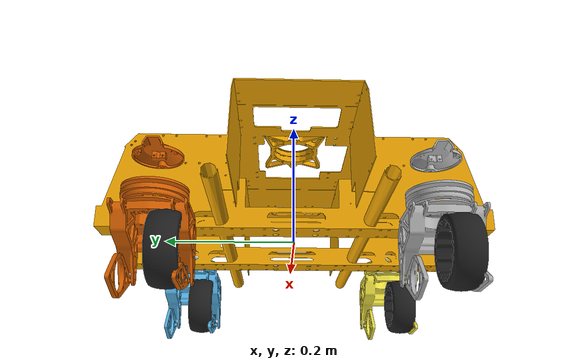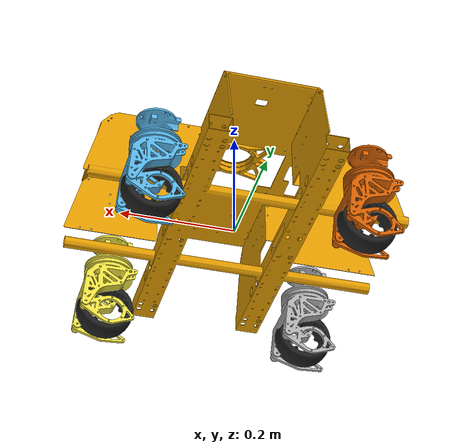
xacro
<?xml version="1.0"?>
<robot xmlns:xacro="http://www.ros.org/wiki/xacro" name="sentry">

    <xacro:arg name="load_chassis" default="true"/>
    <xacro:arg name="use_simulation" default="false"/>
    <xacro:arg name="roller_type" default="realistic"/>

    <xacro:if value="$(arg load_chassis)">
        <xacro:include filename="$(find rm_description)/urdf/sentry/chassis.urdf.xacro"/>
        <xacro:chassis roller_type="$(arg roller_type)"/>
    </xacro:if>

    <xacro:if value="$(arg use_simulation)">
        <gazebo>
            <plugin name="rm_ros_control" filename="librm_robot_hw_sim.so">
                <robotNamespace>/</robotNamespace>
                <robotSimType>rm_gazebo/RmRobotHWSim</robotSimType>
            </plugin>
        </gazebo>
    </xacro:if>

</robot>

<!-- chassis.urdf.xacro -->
<robot xmlns:xacro="http://www.ros.org/wiki/xacro">

    <xacro:include filename="$(find rm_description)/urdf/common/swerve_drive.urdf.xacro"/>
    <!-- https://upload.wikimedia.org/wikipedia/commons/5/52/Wheelbase_and_Track.png -->
    <xacro:property name="wheel_track" value="0.362"/>
    <xacro:property name="wheel_base" value="0.362"/>
    <xacro:property name="wheel_offset_z" value="0.013"/>
    <xacro:macro name="chassis" params="roller_type">

        <link name="base_link">
            <inertial>
                <mass value="9.16"/>
                <origin xyz="0.00322  0.014441  0.043408"/>
                <inertia ixx="2.298e-1" ixy="7.142e-4" ixz="1.441e-2" iyy="2.387e-1"
                         iyz="1.056e-2" izz="3.928e-1"/>
            </inertial>
            <visual>
                <origin xyz="0 0 0" rpy="0 0 0"/>
                <geometry>
                    <mesh filename="package://rm_description/meshes/sentry/base.stl" scale="1 1 1"/>
                </geometry>
            </visual>
            <collision>
                <origin xyz="0 0 0.04" rpy="0 0 0"/>
                <geometry>
                    <box size="0.615 0.62 0.3"/>
                </geometry>
            </collision>
        </link>

        <xacro:swerve_drive prefix="left_front" connected_to="base_link"
                            x_offset="${wheel_track/2}" y_offset="${wheel_base/2}"
                            z_offset="${wheel_offset_z}"/>
        <xacro:swerve_drive prefix="right_front" connected_to="base_link"
                            x_offset="${wheel_track/2}" y_offset="${-wheel_base/2}"
                            z_offset="${wheel_offset_z}"/>
        <xacro:swerve_drive prefix="left_back" connected_to="base_link"
                            x_offset="${-wheel_track/2}" y_offset="${wheel_base/2}"
                            z_offset="${wheel_offset_z}"/>
        <xacro:swerve_drive prefix="right_back" connected_to="base_link"
                            x_offset="${-wheel_track/2}" y_offset="${-wheel_base/2}"
                            z_offset="${wheel_offset_z}"/>

        <xacro:swerve_transmission prefix="left_front" wheel_reduction="13" pivot_offset="2.340"/>
        <xacro:swerve_transmission prefix="right_front" wheel_reduction="13" pivot_offset="-0.285"/>
        <xacro:swerve_transmission prefix="left_back" wheel_reduction="13" pivot_offset="-0.259"/>
        <xacro:swerve_transmission prefix="right_back" wheel_reduction="13" pivot_offset="2.330"/>

    </xacro:macro>

</robot>

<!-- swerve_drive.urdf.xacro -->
<robot xmlns:xacro="http://www.ros.org/wiki/xacro">

    <xacro:macro name="swerve_drive"
                 params="prefix x_offset y_offset z_offset  connected_to">

        <link name="${prefix}_pivot">
            <visual>
                <origin xyz="0 0 0" rpy="0 0 0"/>
                <geometry>
                    <mesh filename="package://rm_description/meshes/common/swerve_pivot.stl"
                          scale="0.001 0.001 0.001"/>
                </geometry>
            </visual>
            <inertial>
                <mass value="0.114131"/>
                <origin xyz="-0.00005 0.017079 -0.041536" rpy="0 0 0"/>
                <inertia ixx="1.335e-4" ixy="26.001e-9" ixz="65.031e-9" iyy="1.372e-4" iyz="20051.742e-9"
                         izz="66866.081e-9"/>
            </inertial>
        </link>

        <joint name="${prefix}_pivot_joint" type="revolute">
            <axis xyz="0 0 1"/>
            <origin xyz="${x_offset} ${y_offset} ${z_offset}" rpy="0 0 0"/>
            <parent link="${connected_to}"/>
            <child link="${prefix}_pivot"/>
            <dynamics damping="0.0" friction="0.1"/>
            <limit effort="1.2" velocity="50" lower="-1e10" upper="1e10"/>
        </joint>

        <link name="${prefix}_wheel">
            <visual>
                <origin xyz="0 0 0" rpy="0 0 0"/>
                <geometry>
                    <mesh filename="package://rm_description/meshes/common/swerve_wheel.stl"
                          scale="0.001 0.001 0.001"/>
                </geometry>
            </visual>
            <inertial>
                <mass value="0.267401"/>
                <origin xyz="-0.000004 0.000125 0.000001" rpy="0 0 0"/>
                <inertia ixx="3.585e-4" ixy="0" ixz="13.459e-9" iyy="6.846e-4" iyz="0"
                         izz="3.584e-4"/>
            </inertial>
            <collision>
                <origin xyz="0 0 0" rpy="${pi/2.} 0 0"/>
                <geometry>
                    <cylinder length="0.02" radius="0.055"/>
                </geometry>
            </collision>
        </link>

        <joint name="${prefix}_wheel_joint" type="revolute">
            <axis xyz="0 1 0"/>
            <origin xyz="0 0 -0.07735" rpy="0 0 0"/>
            <parent link="${prefix}_pivot"/>
            <child link="${prefix}_wheel"/>
            <limit effort="3.0" velocity="100" lower="-1e10" upper="1e10"/>
            <dynamics damping="0.0" friction="0.05"/>
        </joint>

        <gazebo reference="${prefix}_wheel">
            <mu1 value="1.0"/>
            <mu2 value="1.0"/>
            <kp value="1000000.0"/>
            <kd value="100.0"/>
            <material>Gazebo/Black</material>
        </gazebo>
    </xacro:macro>

    <xacro:macro name="swerve_transmission" params="prefix wheel_reduction  pivot_offset">

        <transmission name="${prefix}_pivot_trans">
            <type>transmission_interface/SimpleTransmission</type>
            <actuator name="${prefix}_pivot_motor">
                <mechanicalReduction>-1</mechanicalReduction>
            </actuator>
            <joint name="${prefix}_pivot_joint">
                <offset>${pivot_offset}</offset>
                <hardwareInterface>hardware_interface/EffortJointInterface</hardwareInterface>
            </joint>
        </transmission>

        <transmission name="${prefix}_wheel_trans">
            <type>transmission_interface/SimpleTransmission</type>
            <actuator name="${prefix}_wheel_motor">
                <mechanicalReduction>${wheel_reduction}</mechanicalReduction>
            </actuator>
            <joint name="${prefix}_wheel_joint">
                <hardwareInterface>hardware_interface/EffortJointInterface</hardwareInterface>
            </joint>
        </transmission>
    </xacro:macro>

</robot>
